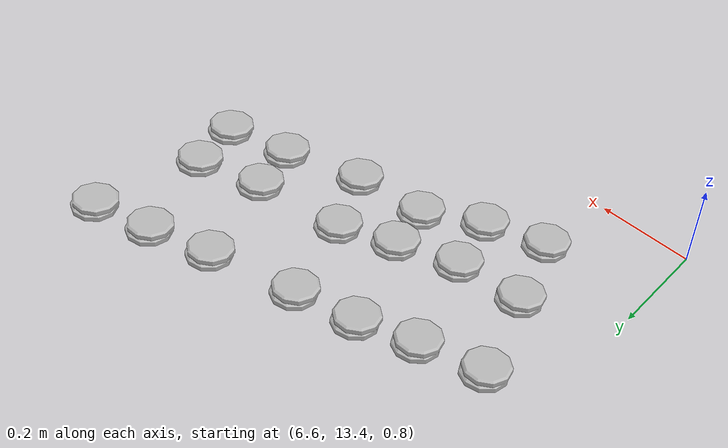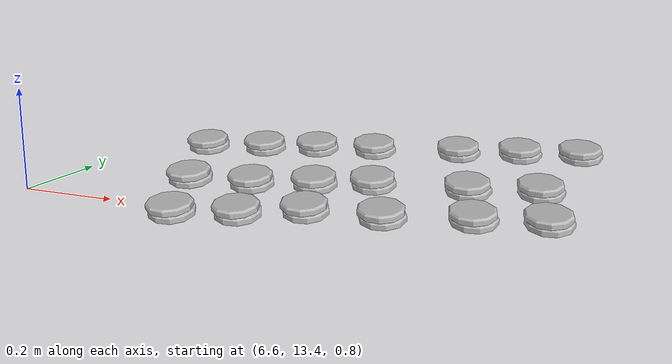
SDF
<sdf version="1.6">
 <world name="default">
  <model name="burger">
   <link name="link_1">
    <inertial>
     <mass>1</mass>
     <inertia>
      <ixx>0.166667</ixx>
      <ixy>0</ixy>
      <ixz>0</ixz>
      <iyy>0.166667</iyy>
      <iyz>0</iyz>
      <izz>0.166667</izz>
     </inertia>
    </inertial>
    <visual name="visual">
     <geometry><mesh><uri>model://burger/meshes/burger.dae</uri><scale>1 1 1</scale></mesh></geometry>
    </visual>
    <collision name="collision">
     <geometry><mesh><uri>model://burger/meshes/burger.dae</uri><scale>1 1 1</scale></mesh></geometry>
     <surface>
      <friction>
       <ode><mu>1</mu><mu2>1</mu2><fdir1>0 0 0</fdir1><slip1>0</slip1><slip2>0</slip2></ode>
       <torsional>
        <coefficient>1</coefficient>
        <patch_radius>0</patch_radius>
        <surface_radius>0</surface_radius>
        <use_patch_radius>1</use_patch_radius>
        <ode><slip>0</slip></ode>
       </torsional>
      </friction>
      <bounce><restitution_coefficient>0</restitution_coefficient><threshold>1e+06</threshold></bounce>
      <contact>
       <collide_without_contact>0</collide_without_contact>
       <collide_without_contact_bitmask>1</collide_without_contact_bitmask>
       <collide_bitmask>1</collide_bitmask>
       <ode>
        <soft_cfm>0</soft_cfm>
        <soft_erp>0.2</soft_erp>
        <kp>1e+13</kp>
        <kd>1</kd>
        <max_vel>0.01</max_vel>
        <min_depth>0</min_depth>
       </ode>
       <bullet>
        <split_impulse>1</split_impulse>
        <split_impulse_penetration_threshold>-0.01</split_impulse_penetration_threshold>
        <soft_cfm>0</soft_cfm>
        <soft_erp>0.2</soft_erp>
        <kp>1e+13</kp>
        <kd>1</kd>
       </bullet>
      </contact>
     </surface>
    </collision>
   </link>
   <static>1</static>
   <pose>6.71076 13.8816 0.782281 0.179017 -0 0.267231</pose>
  </model>
  <model name="burger_clone">
   <link name="link_1">
    <inertial>
     <mass>1</mass>
     <inertia>
      <ixx>0.166667</ixx>
      <ixy>0</ixy>
      <ixz>0</ixz>
      <iyy>0.166667</iyy>
      <iyz>0</iyz>
      <izz>0.166667</izz>
     </inertia>
    </inertial>
    <visual name="visual">
     <geometry><mesh><uri>model://burger/meshes/burger.dae</uri><scale>1 1 1</scale></mesh></geometry>
    </visual>
    <collision name="collision">
     <geometry><mesh><uri>model://burger/meshes/burger.dae</uri><scale>1 1 1</scale></mesh></geometry>
     <surface>
      <friction>
       <ode><mu>1</mu><mu2>1</mu2><fdir1>0 0 0</fdir1><slip1>0</slip1><slip2>0</slip2></ode>
       <torsional>
        <coefficient>1</coefficient>
        <patch_radius>0</patch_radius>
        <surface_radius>0</surface_radius>
        <use_patch_radius>1</use_patch_radius>
        <ode><slip>0</slip></ode>
       </torsional>
      </friction>
      <bounce><restitution_coefficient>0</restitution_coefficient><threshold>1e+06</threshold></bounce>
      <contact>
       <collide_without_contact>0</collide_without_contact>
       <collide_without_contact_bitmask>1</collide_without_contact_bitmask>
       <collide_bitmask>1</collide_bitmask>
       <ode>
        <soft_cfm>0</soft_cfm>
        <soft_erp>0.2</soft_erp>
        <kp>1e+13</kp>
        <kd>1</kd>
        <max_vel>0.01</max_vel>
        <min_depth>0</min_depth>
       </ode>
       <bullet>
        <split_impulse>1</split_impulse>
        <split_impulse_penetration_threshold>-0.01</split_impulse_penetration_threshold>
        <soft_cfm>0</soft_cfm>
        <soft_erp>0.2</soft_erp>
        <kp>1e+13</kp>
        <kd>1</kd>
       </bullet>
      </contact>
     </surface>
    </collision>
   </link>
   <static>1</static>
   <pose>6.84673 13.9175 0.782281 0.179017 -0 0.267231</pose>
  </model>
  <model name="burger_clone_0">
   <link name="link_1">
    <inertial>
     <mass>1</mass>
     <inertia>
      <ixx>0.166667</ixx>
      <ixy>0</ixy>
      <ixz>0</ixz>
      <iyy>0.166667</iyy>
      <iyz>0</iyz>
      <izz>0.166667</izz>
     </inertia>
    </inertial>
    <visual name="visual">
     <geometry><mesh><uri>model://burger/meshes/burger.dae</uri><scale>1 1 1</scale></mesh></geometry>
    </visual>
    <collision name="collision">
     <geometry><mesh><uri>model://burger/meshes/burger.dae</uri><scale>1 1 1</scale></mesh></geometry>
     <surface>
      <friction>
       <ode><mu>1</mu><mu2>1</mu2><fdir1>0 0 0</fdir1><slip1>0</slip1><slip2>0</slip2></ode>
       <torsional>
        <coefficient>1</coefficient>
        <patch_radius>0</patch_radius>
        <surface_radius>0</surface_radius>
        <use_patch_radius>1</use_patch_radius>
        <ode><slip>0</slip></ode>
       </torsional>
      </friction>
      <bounce><restitution_coefficient>0</restitution_coefficient><threshold>1e+06</threshold></bounce>
      <contact>
       <collide_without_contact>0</collide_without_contact>
       <collide_without_contact_bitmask>1</collide_without_contact_bitmask>
       <collide_bitmask>1</collide_bitmask>
       <ode>
        <soft_cfm>0</soft_cfm>
        <soft_erp>0.2</soft_erp>
        <kp>1e+13</kp>
        <kd>1</kd>
        <max_vel>0.01</max_vel>
        <min_depth>0</min_depth>
       </ode>
       <bullet>
        <split_impulse>1</split_impulse>
        <split_impulse_penetration_threshold>-0.01</split_impulse_penetration_threshold>
        <soft_cfm>0</soft_cfm>
        <soft_erp>0.2</soft_erp>
        <kp>1e+13</kp>
        <kd>1</kd>
       </bullet>
      </contact>
     </surface>
    </collision>
   </link>
   <static>1</static>
   <pose>6.96784 13.9566 0.782281 0.179017 -0 0.267231</pose>
  </model>
  <model name="burger_clone_1">
   <link name="link_1">
    <inertial>
     <mass>1</mass>
     <inertia>
      <ixx>0.166667</ixx>
      <ixy>0</ixy>
      <ixz>0</ixz>
      <iyy>0.166667</iyy>
      <iyz>0</iyz>
      <izz>0.166667</izz>
     </inertia>
    </inertial>
    <visual name="visual">
     <geometry><mesh><uri>model://burger/meshes/burger.dae</uri><scale>1 1 1</scale></mesh></geometry>
    </visual>
    <collision name="collision">
     <geometry><mesh><uri>model://burger/meshes/burger.dae</uri><scale>1 1 1</scale></mesh></geometry>
     <surface>
      <friction>
       <ode><mu>1</mu><mu2>1</mu2><fdir1>0 0 0</fdir1><slip1>0</slip1><slip2>0</slip2></ode>
       <torsional>
        <coefficient>1</coefficient>
        <patch_radius>0</patch_radius>
        <surface_radius>0</surface_radius>
        <use_patch_radius>1</use_patch_radius>
        <ode><slip>0</slip></ode>
       </torsional>
      </friction>
      <bounce><restitution_coefficient>0</restitution_coefficient><threshold>1e+06</threshold></bounce>
      <contact>
       <collide_without_contact>0</collide_without_contact>
       <collide_without_contact_bitmask>1</collide_without_contact_bitmask>
       <collide_bitmask>1</collide_bitmask>
       <ode>
        <soft_cfm>0</soft_cfm>
        <soft_erp>0.2</soft_erp>
        <kp>1e+13</kp>
        <kd>1</kd>
        <max_vel>0.01</max_vel>
        <min_depth>0</min_depth>
       </ode>
       <bullet>
        <split_impulse>1</split_impulse>
        <split_impulse_penetration_threshold>-0.01</split_impulse_penetration_threshold>
        <soft_cfm>0</soft_cfm>
        <soft_erp>0.2</soft_erp>
        <kp>1e+13</kp>
        <kd>1</kd>
       </bullet>
      </contact>
     </surface>
    </collision>
   </link>
   <static>1</static>
   <pose>7.10351 13.9856 0.782281 0.179017 -0 0.267231</pose>
  </model>
  <model name="burger_clone_2">
   <link name="link_1">
    <inertial>
     <mass>1</mass>
     <inertia>
      <ixx>0.166667</ixx>
      <ixy>0</ixy>
      <ixz>0</ixz>
      <iyy>0.166667</iyy>
      <iyz>0</iyz>
      <izz>0.166667</izz>
     </inertia>
    </inertial>
    <visual name="visual">
     <geometry><mesh><uri>model://burger/meshes/burger.dae</uri><scale>1 1 1</scale></mesh></geometry>
    </visual>
    <collision name="collision">
     <geometry><mesh><uri>model://burger/meshes/burger.dae</uri><scale>1 1 1</scale></mesh></geometry>
     <surface>
      <friction>
       <ode><mu>1</mu><mu2>1</mu2><fdir1>0 0 0</fdir1><slip1>0</slip1><slip2>0</slip2></ode>
       <torsional>
        <coefficient>1</coefficient>
        <patch_radius>0</patch_radius>
        <surface_radius>0</surface_radius>
        <use_patch_radius>1</use_patch_radius>
        <ode><slip>0</slip></ode>
       </torsional>
      </friction>
      <bounce><restitution_coefficient>0</restitution_coefficient><threshold>1e+06</threshold></bounce>
      <contact>
       <collide_without_contact>0</collide_without_contact>
       <collide_without_contact_bitmask>1</collide_without_contact_bitmask>
       <collide_bitmask>1</collide_bitmask>
       <ode>
        <soft_cfm>0</soft_cfm>
        <soft_erp>0.2</soft_erp>
        <kp>1e+13</kp>
        <kd>1</kd>
        <max_vel>0.01</max_vel>
        <min_depth>0</min_depth>
       </ode>
       <bullet>
        <split_impulse>1</split_impulse>
        <split_impulse_penetration_threshold>-0.01</split_impulse_penetration_threshold>
        <soft_cfm>0</soft_cfm>
        <soft_erp>0.2</soft_erp>
        <kp>1e+13</kp>
        <kd>1</kd>
       </bullet>
      </contact>
     </surface>
    </collision>
   </link>
   <static>1</static>
   <pose>7.29659 14.03 0.782281 0.179017 -0 0.267231</pose>
  </model>
  <model name="burger_clone_3">
   <link name="link_1">
    <inertial>
     <mass>1</mass>
     <inertia>
      <ixx>0.166667</ixx>
      <ixy>0</ixy>
      <ixz>0</ixz>
      <iyy>0.166667</iyy>
      <iyz>0</iyz>
      <izz>0.166667</izz>
     </inertia>
    </inertial>
    <visual name="visual">
     <geometry><mesh><uri>model://burger/meshes/burger.dae</uri><scale>1 1 1</scale></mesh></geometry>
    </visual>
    <collision name="collision">
     <geometry><mesh><uri>model://burger/meshes/burger.dae</uri><scale>1 1 1</scale></mesh></geometry>
     <surface>
      <friction>
       <ode><mu>1</mu><mu2>1</mu2><fdir1>0 0 0</fdir1><slip1>0</slip1><slip2>0</slip2></ode>
       <torsional>
        <coefficient>1</coefficient>
        <patch_radius>0</patch_radius>
        <surface_radius>0</surface_radius>
        <use_patch_radius>1</use_patch_radius>
        <ode><slip>0</slip></ode>
       </torsional>
      </friction>
      <bounce><restitution_coefficient>0</restitution_coefficient><threshold>1e+06</threshold></bounce>
      <contact>
       <collide_without_contact>0</collide_without_contact>
       <collide_without_contact_bitmask>1</collide_without_contact_bitmask>
       <collide_bitmask>1</collide_bitmask>
       <ode>
        <soft_cfm>0</soft_cfm>
        <soft_erp>0.2</soft_erp>
        <kp>1e+13</kp>
        <kd>1</kd>
        <max_vel>0.01</max_vel>
        <min_depth>0</min_depth>
       </ode>
       <bullet>
        <split_impulse>1</split_impulse>
        <split_impulse_penetration_threshold>-0.01</split_impulse_penetration_threshold>
        <soft_cfm>0</soft_cfm>
        <soft_erp>0.2</soft_erp>
        <kp>1e+13</kp>
        <kd>1</kd>
       </bullet>
      </contact>
     </surface>
    </collision>
   </link>
   <static>1</static>
   <pose>7.43315 14.0683 0.782281 0.179017 -0 0.267231</pose>
  </model>
  <model name="burger_clone_4">
   <link name="link_1">
    <inertial>
     <mass>1</mass>
     <inertia>
      <ixx>0.166667</ixx>
      <ixy>0</ixy>
      <ixz>0</ixz>
      <iyy>0.166667</iyy>
      <iyz>0</iyz>
      <izz>0.166667</izz>
     </inertia>
    </inertial>
    <visual name="visual">
     <geometry><mesh><uri>model://burger/meshes/burger.dae</uri><scale>1 1 1</scale></mesh></geometry>
    </visual>
    <collision name="collision">
     <geometry><mesh><uri>model://burger/meshes/burger.dae</uri><scale>1 1 1</scale></mesh></geometry>
     <surface>
      <friction>
       <ode><mu>1</mu><mu2>1</mu2><fdir1>0 0 0</fdir1><slip1>0</slip1><slip2>0</slip2></ode>
       <torsional>
        <coefficient>1</coefficient>
        <patch_radius>0</patch_radius>
        <surface_radius>0</surface_radius>
        <use_patch_radius>1</use_patch_radius>
        <ode><slip>0</slip></ode>
       </torsional>
      </friction>
      <bounce><restitution_coefficient>0</restitution_coefficient><threshold>1e+06</threshold></bounce>
      <contact>
       <collide_without_contact>0</collide_without_contact>
       <collide_without_contact_bitmask>1</collide_without_contact_bitmask>
       <collide_bitmask>1</collide_bitmask>
       <ode>
        <soft_cfm>0</soft_cfm>
        <soft_erp>0.2</soft_erp>
        <kp>1e+13</kp>
        <kd>1</kd>
        <max_vel>0.01</max_vel>
        <min_depth>0</min_depth>
       </ode>
       <bullet>
        <split_impulse>1</split_impulse>
        <split_impulse_penetration_threshold>-0.01</split_impulse_penetration_threshold>
        <soft_cfm>0</soft_cfm>
        <soft_erp>0.2</soft_erp>
        <kp>1e+13</kp>
        <kd>1</kd>
       </bullet>
      </contact>
     </surface>
    </collision>
   </link>
   <static>1</static>
   <pose>7.56578 14.1004 0.782281 0.179017 -0 0.267231</pose>
  </model>
  <model name="burger_clone_6">
   <link name="link_1">
    <inertial>
     <mass>1</mass>
     <inertia>
      <ixx>0.166667</ixx>
      <ixy>0</ixy>
      <ixz>0</ixz>
      <iyy>0.166667</iyy>
      <iyz>0</iyz>
      <izz>0.166667</izz>
     </inertia>
    </inertial>
    <visual name="visual">
     <geometry><mesh><uri>model://burger/meshes/burger.dae</uri><scale>1 1 1</scale></mesh></geometry>
    </visual>
    <collision name="collision">
     <geometry><mesh><uri>model://burger/meshes/burger.dae</uri><scale>1 1 1</scale></mesh></geometry>
     <surface>
      <friction>
       <ode><mu>1</mu><mu2>1</mu2><fdir1>0 0 0</fdir1><slip1>0</slip1><slip2>0</slip2></ode>
       <torsional>
        <coefficient>1</coefficient>
        <patch_radius>0</patch_radius>
        <surface_radius>0</surface_radius>
        <use_patch_radius>1</use_patch_radius>
        <ode><slip>0</slip></ode>
       </torsional>
      </friction>
      <bounce><restitution_coefficient>0</restitution_coefficient><threshold>1e+06</threshold></bounce>
      <contact>
       <collide_without_contact>0</collide_without_contact>
       <collide_without_contact_bitmask>1</collide_without_contact_bitmask>
       <collide_bitmask>1</collide_bitmask>
       <ode>
        <soft_cfm>0</soft_cfm>
        <soft_erp>0.2</soft_erp>
        <kp>1e+13</kp>
        <kd>1</kd>
        <max_vel>0.01</max_vel>
        <min_depth>0</min_depth>
       </ode>
       <bullet>
        <split_impulse>1</split_impulse>
        <split_impulse_penetration_threshold>-0.01</split_impulse_penetration_threshold>
        <soft_cfm>0</soft_cfm>
        <soft_erp>0.2</soft_erp>
        <kp>1e+13</kp>
        <kd>1</kd>
       </bullet>
      </contact>
     </surface>
    </collision>
   </link>
   <static>1</static>
   <pose>6.77845 13.686 0.753962 0.179017 -0 0.267231</pose>
  </model>
  <model name="burger_clone_6_clone">
   <link name="link_1">
    <inertial>
     <mass>1</mass>
     <inertia>
      <ixx>0.166667</ixx>
      <ixy>0</ixy>
      <ixz>0</ixz>
      <iyy>0.166667</iyy>
      <iyz>0</iyz>
      <izz>0.166667</izz>
     </inertia>
    </inertial>
    <visual name="visual">
     <geometry><mesh><uri>model://burger/meshes/burger.dae</uri><scale>1 1 1</scale></mesh></geometry>
    </visual>
    <collision name="collision">
     <geometry><mesh><uri>model://burger/meshes/burger.dae</uri><scale>1 1 1</scale></mesh></geometry>
     <surface>
      <friction>
       <ode><mu>1</mu><mu2>1</mu2><fdir1>0 0 0</fdir1><slip1>0</slip1><slip2>0</slip2></ode>
       <torsional>
        <coefficient>1</coefficient>
        <patch_radius>0</patch_radius>
        <surface_radius>0</surface_radius>
        <use_patch_radius>1</use_patch_radius>
        <ode><slip>0</slip></ode>
       </torsional>
      </friction>
      <bounce><restitution_coefficient>0</restitution_coefficient><threshold>1e+06</threshold></bounce>
      <contact>
       <collide_without_contact>0</collide_without_contact>
       <collide_without_contact_bitmask>1</collide_without_contact_bitmask>
       <collide_bitmask>1</collide_bitmask>
       <ode>
        <soft_cfm>0</soft_cfm>
        <soft_erp>0.2</soft_erp>
        <kp>1e+13</kp>
        <kd>1</kd>
        <max_vel>0.01</max_vel>
        <min_depth>0</min_depth>
       </ode>
       <bullet>
        <split_impulse>1</split_impulse>
        <split_impulse_penetration_threshold>-0.01</split_impulse_penetration_threshold>
        <soft_cfm>0</soft_cfm>
        <soft_erp>0.2</soft_erp>
        <kp>1e+13</kp>
        <kd>1</kd>
       </bullet>
      </contact>
     </surface>
    </collision>
   </link>
   <static>1</static>
   <pose>6.9242 13.7 0.753962 0.179017 -0 0.267231</pose>
  </model>
  <model name="burger_clone_6_clone_0">
   <link name="link_1">
    <inertial>
     <mass>1</mass>
     <inertia>
      <ixx>0.166667</ixx>
      <ixy>0</ixy>
      <ixz>0</ixz>
      <iyy>0.166667</iyy>
      <iyz>0</iyz>
      <izz>0.166667</izz>
     </inertia>
    </inertial>
    <visual name="visual">
     <geometry><mesh><uri>model://burger/meshes/burger.dae</uri><scale>1 1 1</scale></mesh></geometry>
    </visual>
    <collision name="collision">
     <geometry><mesh><uri>model://burger/meshes/burger.dae</uri><scale>1 1 1</scale></mesh></geometry>
     <surface>
      <friction>
       <ode><mu>1</mu><mu2>1</mu2><fdir1>0 0 0</fdir1><slip1>0</slip1><slip2>0</slip2></ode>
       <torsional>
        <coefficient>1</coefficient>
        <patch_radius>0</patch_radius>
        <surface_radius>0</surface_radius>
        <use_patch_radius>1</use_patch_radius>
        <ode><slip>0</slip></ode>
       </torsional>
      </friction>
      <bounce><restitution_coefficient>0</restitution_coefficient><threshold>1e+06</threshold></bounce>
      <contact>
       <collide_without_contact>0</collide_without_contact>
       <collide_without_contact_bitmask>1</collide_without_contact_bitmask>
       <collide_bitmask>1</collide_bitmask>
       <ode>
        <soft_cfm>0</soft_cfm>
        <soft_erp>0.2</soft_erp>
        <kp>1e+13</kp>
        <kd>1</kd>
        <max_vel>0.01</max_vel>
        <min_depth>0</min_depth>
       </ode>
       <bullet>
        <split_impulse>1</split_impulse>
        <split_impulse_penetration_threshold>-0.01</split_impulse_penetration_threshold>
        <soft_cfm>0</soft_cfm>
        <soft_erp>0.2</soft_erp>
        <kp>1e+13</kp>
        <kd>1</kd>
       </bullet>
      </contact>
     </surface>
    </collision>
   </link>
   <static>1</static>
   <pose>7.05349 13.7443 0.753962 0.179017 -0 0.267231</pose>
  </model>
  <model name="burger_clone_6_clone_1">
   <link name="link_1">
    <inertial>
     <mass>1</mass>
     <inertia>
      <ixx>0.166667</ixx>
      <ixy>0</ixy>
      <ixz>0</ixz>
      <iyy>0.166667</iyy>
      <iyz>0</iyz>
      <izz>0.166667</izz>
     </inertia>
    </inertial>
    <visual name="visual">
     <geometry><mesh><uri>model://burger/meshes/burger.dae</uri><scale>1 1 1</scale></mesh></geometry>
    </visual>
    <collision name="collision">
     <geometry><mesh><uri>model://burger/meshes/burger.dae</uri><scale>1 1 1</scale></mesh></geometry>
     <surface>
      <friction>
       <ode><mu>1</mu><mu2>1</mu2><fdir1>0 0 0</fdir1><slip1>0</slip1><slip2>0</slip2></ode>
       <torsional>
        <coefficient>1</coefficient>
        <patch_radius>0</patch_radius>
        <surface_radius>0</surface_radius>
        <use_patch_radius>1</use_patch_radius>
        <ode><slip>0</slip></ode>
       </torsional>
      </friction>
      <bounce><restitution_coefficient>0</restitution_coefficient><threshold>1e+06</threshold></bounce>
      <contact>
       <collide_without_contact>0</collide_without_contact>
       <collide_without_contact_bitmask>1</collide_without_contact_bitmask>
       <collide_bitmask>1</collide_bitmask>
       <ode>
        <soft_cfm>0</soft_cfm>
        <soft_erp>0.2</soft_erp>
        <kp>1e+13</kp>
        <kd>1</kd>
        <max_vel>0.01</max_vel>
        <min_depth>0</min_depth>
       </ode>
       <bullet>
        <split_impulse>1</split_impulse>
        <split_impulse_penetration_threshold>-0.01</split_impulse_penetration_threshold>
        <soft_cfm>0</soft_cfm>
        <soft_erp>0.2</soft_erp>
        <kp>1e+13</kp>
        <kd>1</kd>
       </bullet>
      </contact>
     </surface>
    </collision>
   </link>
   <static>1</static>
   <pose>7.17129 13.7898 0.753962 0.179017 -0 0.267231</pose>
  </model>
  <model name="burger_clone_6_clone_2">
   <link name="link_1">
    <inertial>
     <mass>1</mass>
     <inertia>
      <ixx>0.166667</ixx>
      <ixy>0</ixy>
      <ixz>0</ixz>
      <iyy>0.166667</iyy>
      <iyz>0</iyz>
      <izz>0.166667</izz>
     </inertia>
    </inertial>
    <visual name="visual">
     <geometry><mesh><uri>model://burger/meshes/burger.dae</uri><scale>1 1 1</scale></mesh></geometry>
    </visual>
    <collision name="collision">
     <geometry><mesh><uri>model://burger/meshes/burger.dae</uri><scale>1 1 1</scale></mesh></geometry>
     <surface>
      <friction>
       <ode><mu>1</mu><mu2>1</mu2><fdir1>0 0 0</fdir1><slip1>0</slip1><slip2>0</slip2></ode>
       <torsional>
        <coefficient>1</coefficient>
        <patch_radius>0</patch_radius>
        <surface_radius>0</surface_radius>
        <use_patch_radius>1</use_patch_radius>
        <ode><slip>0</slip></ode>
       </torsional>
      </friction>
      <bounce><restitution_coefficient>0</restitution_coefficient><threshold>1e+06</threshold></bounce>
      <contact>
       <collide_without_contact>0</collide_without_contact>
       <collide_without_contact_bitmask>1</collide_without_contact_bitmask>
       <collide_bitmask>1</collide_bitmask>
       <ode>
        <soft_cfm>0</soft_cfm>
        <soft_erp>0.2</soft_erp>
        <kp>1e+13</kp>
        <kd>1</kd>
        <max_vel>0.01</max_vel>
        <min_depth>0</min_depth>
       </ode>
       <bullet>
        <split_impulse>1</split_impulse>
        <split_impulse_penetration_threshold>-0.01</split_impulse_penetration_threshold>
        <soft_cfm>0</soft_cfm>
        <soft_erp>0.2</soft_erp>
        <kp>1e+13</kp>
        <kd>1</kd>
       </bullet>
      </contact>
     </surface>
    </collision>
   </link>
   <static>1</static>
   <pose>7.37221 13.8162 0.753962 0.179017 -0 0.267231</pose>
  </model>
  <model name="burger_clone_6_clone_3">
   <link name="link_1">
    <inertial>
     <mass>1</mass>
     <inertia>
      <ixx>0.166667</ixx>
      <ixy>0</ixy>
      <ixz>0</ixz>
      <iyy>0.166667</iyy>
      <iyz>0</iyz>
      <izz>0.166667</izz>
     </inertia>
    </inertial>
    <visual name="visual">
     <geometry><mesh><uri>model://burger/meshes/burger.dae</uri><scale>1 1 1</scale></mesh></geometry>
    </visual>
    <collision name="collision">
     <geometry><mesh><uri>model://burger/meshes/burger.dae</uri><scale>1 1 1</scale></mesh></geometry>
     <surface>
      <friction>
       <ode><mu>1</mu><mu2>1</mu2><fdir1>0 0 0</fdir1><slip1>0</slip1><slip2>0</slip2></ode>
       <torsional>
        <coefficient>1</coefficient>
        <patch_radius>0</patch_radius>
        <surface_radius>0</surface_radius>
        <use_patch_radius>1</use_patch_radius>
        <ode><slip>0</slip></ode>
       </torsional>
      </friction>
      <bounce><restitution_coefficient>0</restitution_coefficient><threshold>1e+06</threshold></bounce>
      <contact>
       <collide_without_contact>0</collide_without_contact>
       <collide_without_contact_bitmask>1</collide_without_contact_bitmask>
       <collide_bitmask>1</collide_bitmask>
       <ode>
        <soft_cfm>0</soft_cfm>
        <soft_erp>0.2</soft_erp>
        <kp>1e+13</kp>
        <kd>1</kd>
        <max_vel>0.01</max_vel>
        <min_depth>0</min_depth>
       </ode>
       <bullet>
        <split_impulse>1</split_impulse>
        <split_impulse_penetration_threshold>-0.01</split_impulse_penetration_threshold>
        <soft_cfm>0</soft_cfm>
        <soft_erp>0.2</soft_erp>
        <kp>1e+13</kp>
        <kd>1</kd>
       </bullet>
      </contact>
     </surface>
    </collision>
   </link>
   <static>1</static>
   <pose>7.51677 13.8558 0.753962 0.179017 -0 0.267231</pose>
  </model>
  <model name="burger_clone_6_clone_6">
   <link name="link_1">
    <inertial>
     <mass>1</mass>
     <inertia>
      <ixx>0.166667</ixx>
      <ixy>0</ixy>
      <ixz>0</ixz>
      <iyy>0.166667</iyy>
      <iyz>0</iyz>
      <izz>0.166667</izz>
     </inertia>
    </inertial>
    <visual name="visual">
     <geometry><mesh><uri>model://burger/meshes/burger.dae</uri><scale>1 1 1</scale></mesh></geometry>
    </visual>
    <collision name="collision">
     <geometry><mesh><uri>model://burger/meshes/burger.dae</uri><scale>1 1 1</scale></mesh></geometry>
     <surface>
      <friction>
       <ode><mu>1</mu><mu2>1</mu2><fdir1>0 0 0</fdir1><slip1>0</slip1><slip2>0</slip2></ode>
       <torsional>
        <coefficient>1</coefficient>
        <patch_radius>0</patch_radius>
        <surface_radius>0</surface_radius>
        <use_patch_radius>1</use_patch_radius>
        <ode><slip>0</slip></ode>
       </torsional>
      </friction>
      <bounce><restitution_coefficient>0</restitution_coefficient><threshold>1e+06</threshold></bounce>
      <contact>
       <collide_without_contact>0</collide_without_contact>
       <collide_without_contact_bitmask>1</collide_without_contact_bitmask>
       <collide_bitmask>1</collide_bitmask>
       <ode>
        <soft_cfm>0</soft_cfm>
        <soft_erp>0.2</soft_erp>
        <kp>1e+13</kp>
        <kd>1</kd>
        <max_vel>0.01</max_vel>
        <min_depth>0</min_depth>
       </ode>
       <bullet>
        <split_impulse>1</split_impulse>
        <split_impulse_penetration_threshold>-0.01</split_impulse_penetration_threshold>
        <soft_cfm>0</soft_cfm>
        <soft_erp>0.2</soft_erp>
        <kp>1e+13</kp>
        <kd>1</kd>
       </bullet>
      </contact>
     </surface>
    </collision>
   </link>
   <static>1</static>
   <pose>6.8345 13.5241 0.728112 0.179017 -0 0.267231</pose>
  </model>
  <model name="burger_clone_6_clone_6_clone">
   <link name="link_1">
    <inertial>
     <mass>1</mass>
     <inertia>
      <ixx>0.166667</ixx>
      <ixy>0</ixy>
      <ixz>0</ixz>
      <iyy>0.166667</iyy>
      <iyz>0</iyz>
      <izz>0.166667</izz>
     </inertia>
    </inertial>
    <visual name="visual">
     <geometry><mesh><uri>model://burger/meshes/burger.dae</uri><scale>1 1 1</scale></mesh></geometry>
    </visual>
    <collision name="collision">
     <geometry><mesh><uri>model://burger/meshes/burger.dae</uri><scale>1 1 1</scale></mesh></geometry>
     <surface>
      <friction>
       <ode><mu>1</mu><mu2>1</mu2><fdir1>0 0 0</fdir1><slip1>0</slip1><slip2>0</slip2></ode>
       <torsional>
        <coefficient>1</coefficient>
        <patch_radius>0</patch_radius>
        <surface_radius>0</surface_radius>
        <use_patch_radius>1</use_patch_radius>
        <ode><slip>0</slip></ode>
       </torsional>
      </friction>
      <bounce><restitution_coefficient>0</restitution_coefficient><threshold>1e+06</threshold></bounce>
      <contact>
       <collide_without_contact>0</collide_without_contact>
       <collide_without_contact_bitmask>1</collide_without_contact_bitmask>
       <collide_bitmask>1</collide_bitmask>
       <ode>
        <soft_cfm>0</soft_cfm>
        <soft_erp>0.2</soft_erp>
        <kp>1e+13</kp>
        <kd>1</kd>
        <max_vel>0.01</max_vel>
        <min_depth>0</min_depth>
       </ode>
       <bullet>
        <split_impulse>1</split_impulse>
        <split_impulse_penetration_threshold>-0.01</split_impulse_penetration_threshold>
        <soft_cfm>0</soft_cfm>
        <soft_erp>0.2</soft_erp>
        <kp>1e+13</kp>
        <kd>1</kd>
       </bullet>
      </contact>
     </surface>
    </collision>
   </link>
   <static>1</static>
   <pose>6.96317 13.5644 0.728112 0.179017 -0 0.267231</pose>
  </model>
  <model name="burger_clone_6_clone_6_clone_0">
   <link name="link_1">
    <inertial>
     <mass>1</mass>
     <inertia>
      <ixx>0.166667</ixx>
      <ixy>0</ixy>
      <ixz>0</ixz>
      <iyy>0.166667</iyy>
      <iyz>0</iyz>
      <izz>0.166667</izz>
     </inertia>
    </inertial>
    <visual name="visual">
     <geometry><mesh><uri>model://burger/meshes/burger.dae</uri><scale>1 1 1</scale></mesh></geometry>
    </visual>
    <collision name="collision">
     <geometry><mesh><uri>model://burger/meshes/burger.dae</uri><scale>1 1 1</scale></mesh></geometry>
     <surface>
      <friction>
       <ode><mu>1</mu><mu2>1</mu2><fdir1>0 0 0</fdir1><slip1>0</slip1><slip2>0</slip2></ode>
       <torsional>
        <coefficient>1</coefficient>
        <patch_radius>0</patch_radius>
        <surface_radius>0</surface_radius>
        <use_patch_radius>1</use_patch_radius>
        <ode><slip>0</slip></ode>
       </torsional>
      </friction>
      <bounce><restitution_coefficient>0</restitution_coefficient><threshold>1e+06</threshold></bounce>
      <contact>
       <collide_without_contact>0</collide_without_contact>
       <collide_without_contact_bitmask>1</collide_without_contact_bitmask>
       <collide_bitmask>1</collide_bitmask>
       <ode>
        <soft_cfm>0</soft_cfm>
        <soft_erp>0.2</soft_erp>
        <kp>1e+13</kp>
        <kd>1</kd>
        <max_vel>0.01</max_vel>
        <min_depth>0</min_depth>
       </ode>
       <bullet>
        <split_impulse>1</split_impulse>
        <split_impulse_penetration_threshold>-0.01</split_impulse_penetration_threshold>
        <soft_cfm>0</soft_cfm>
        <soft_erp>0.2</soft_erp>
        <kp>1e+13</kp>
        <kd>1</kd>
       </bullet>
      </contact>
     </surface>
    </collision>
   </link>
   <static>1</static>
   <pose>7.08322 13.6297 0.728112 0.179017 -0 0.267231</pose>
  </model>
  <model name="burger_clone_6_clone_6_clone_1">
   <link name="link_1">
    <inertial>
     <mass>1</mass>
     <inertia>
      <ixx>0.166667</ixx>
      <ixy>0</ixy>
      <ixz>0</ixz>
      <iyy>0.166667</iyy>
      <iyz>0</iyz>
      <izz>0.166667</izz>
     </inertia>
    </inertial>
    <visual name="visual">
     <geometry><mesh><uri>model://burger/meshes/burger.dae</uri><scale>1 1 1</scale></mesh></geometry>
    </visual>
    <collision name="collision">
     <geometry><mesh><uri>model://burger/meshes/burger.dae</uri><scale>1 1 1</scale></mesh></geometry>
     <surface>
      <friction>
       <ode><mu>1</mu><mu2>1</mu2><fdir1>0 0 0</fdir1><slip1>0</slip1><slip2>0</slip2></ode>
       <torsional>
        <coefficient>1</coefficient>
        <patch_radius>0</patch_radius>
        <surface_radius>0</surface_radius>
        <use_patch_radius>1</use_patch_radius>
        <ode><slip>0</slip></ode>
       </torsional>
      </friction>
      <bounce><restitution_coefficient>0</restitution_coefficient><threshold>1e+06</threshold></bounce>
      <contact>
       <collide_without_contact>0</collide_without_contact>
       <collide_without_contact_bitmask>1</collide_without_contact_bitmask>
       <collide_bitmask>1</collide_bitmask>
       <ode>
        <soft_cfm>0</soft_cfm>
        <soft_erp>0.2</soft_erp>
        <kp>1e+13</kp>
        <kd>1</kd>
        <max_vel>0.01</max_vel>
        <min_depth>0</min_depth>
       </ode>
       <bullet>
        <split_impulse>1</split_impulse>
        <split_impulse_penetration_threshold>-0.01</split_impulse_penetration_threshold>
        <soft_cfm>0</soft_cfm>
        <soft_erp>0.2</soft_erp>
        <kp>1e+13</kp>
        <kd>1</kd>
       </bullet>
      </contact>
     </surface>
    </collision>
   </link>
   <static>1</static>
   <pose>7.242 13.6463 0.728112 0.179017 -0 0.267231</pose>
  </model>
  <model name="burger_clone_6_clone_6_clone_2">
   <link name="link_1">
    <inertial>
     <mass>1</mass>
     <inertia>
      <ixx>0.166667</ixx>
      <ixy>0</ixy>
      <ixz>0</ixz>
      <iyy>0.166667</iyy>
      <iyz>0</iyz>
      <izz>0.166667</izz>
     </inertia>
    </inertial>
    <visual name="visual">
     <geometry><mesh><uri>model://burger/meshes/burger.dae</uri><scale>1 1 1</scale></mesh></geometry>
    </visual>
    <collision name="collision">
     <geometry><mesh><uri>model://burger/meshes/burger.dae</uri><scale>1 1 1</scale></mesh></geometry>
     <surface>
      <friction>
       <ode><mu>1</mu><mu2>1</mu2><fdir1>0 0 0</fdir1><slip1>0</slip1><slip2>0</slip2></ode>
       <torsional>
        <coefficient>1</coefficient>
        <patch_radius>0</patch_radius>
        <surface_radius>0</surface_radius>
        <use_patch_radius>1</use_patch_radius>
        <ode><slip>0</slip></ode>
       </torsional>
      </friction>
      <bounce><restitution_coefficient>0</restitution_coefficient><threshold>1e+06</threshold></bounce>
      <contact>
       <collide_without_contact>0</collide_without_contact>
       <collide_without_contact_bitmask>1</collide_without_contact_bitmask>
       <collide_bitmask>1</collide_bitmask>
       <ode>
        <soft_cfm>0</soft_cfm>
        <soft_erp>0.2</soft_erp>
        <kp>1e+13</kp>
        <kd>1</kd>
        <max_vel>0.01</max_vel>
        <min_depth>0</min_depth>
       </ode>
       <bullet>
        <split_impulse>1</split_impulse>
        <split_impulse_penetration_threshold>-0.01</split_impulse_penetration_threshold>
        <soft_cfm>0</soft_cfm>
        <soft_erp>0.2</soft_erp>
        <kp>1e+13</kp>
        <kd>1</kd>
       </bullet>
      </contact>
     </surface>
    </collision>
   </link>
   <static>1</static>
   <pose>7.41321 13.6963 0.728112 0.179017 -0 0.267231</pose>
  </model>
  <model name="burger_clone_6_clone_6_clone_3">
   <link name="link_1">
    <inertial>
     <mass>1</mass>
     <inertia>
      <ixx>0.166667</ixx>
      <ixy>0</ixy>
      <ixz>0</ixz>
      <iyy>0.166667</iyy>
      <iyz>0</iyz>
      <izz>0.166667</izz>
     </inertia>
    </inertial>
    <visual name="visual">
     <geometry><mesh><uri>model://burger/meshes/burger.dae</uri><scale>1 1 1</scale></mesh></geometry>
    </visual>
    <collision name="collision">
     <geometry><mesh><uri>model://burger/meshes/burger.dae</uri><scale>1 1 1</scale></mesh></geometry>
     <surface>
      <friction>
       <ode><mu>1</mu><mu2>1</mu2><fdir1>0 0 0</fdir1><slip1>0</slip1><slip2>0</slip2></ode>
       <torsional>
        <coefficient>1</coefficient>
        <patch_radius>0</patch_radius>
        <surface_radius>0</surface_radius>
        <use_patch_radius>1</use_patch_radius>
        <ode><slip>0</slip></ode>
       </torsional>
      </friction>
      <bounce><restitution_coefficient>0</restitution_coefficient><threshold>1e+06</threshold></bounce>
      <contact>
       <collide_without_contact>0</collide_without_contact>
       <collide_without_contact_bitmask>1</collide_without_contact_bitmask>
       <collide_bitmask>1</collide_bitmask>
       <ode>
        <soft_cfm>0</soft_cfm>
        <soft_erp>0.2</soft_erp>
        <kp>1e+13</kp>
        <kd>1</kd>
        <max_vel>0.01</max_vel>
        <min_depth>0</min_depth>
       </ode>
       <bullet>
        <split_impulse>1</split_impulse>
        <split_impulse_penetration_threshold>-0.01</split_impulse_penetration_threshold>
        <soft_cfm>0</soft_cfm>
        <soft_erp>0.2</soft_erp>
        <kp>1e+13</kp>
        <kd>1</kd>
       </bullet>
      </contact>
     </surface>
    </collision>
   </link>
   <static>1</static>
   <pose>7.55379 13.7298 0.728112 0.179017 -0 0.267231</pose>
  </model>
 </world>
</sdf>
